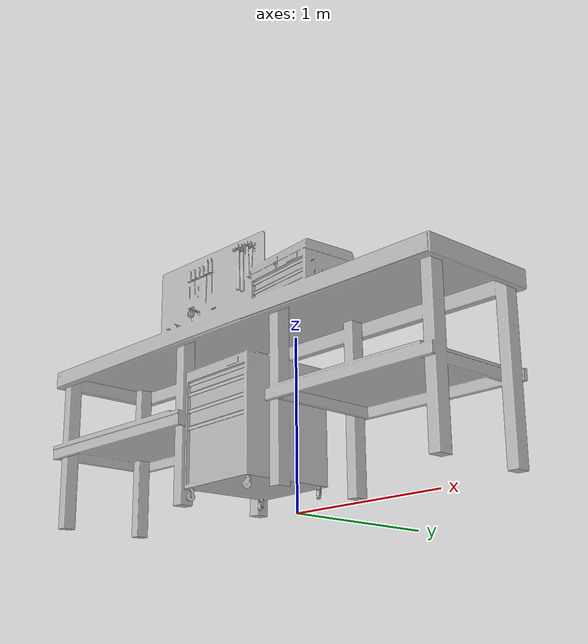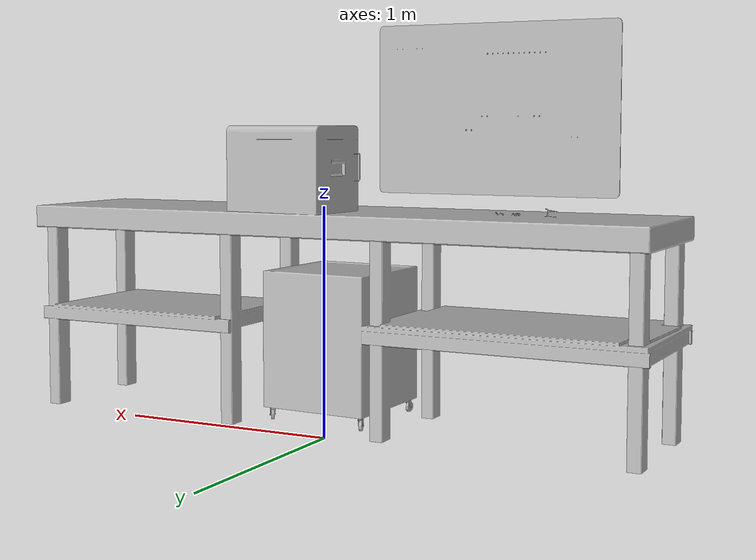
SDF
<?xml version="1.0" ?>
<sdf version="1.6">
  <model name="workbench">
    <static>true</static>
    <link name="link">
      <collision name="collision">
        <geometry>
          <mesh>
            <scale>0.8 1 1</scale>
            <uri>model://workbench/meshes/workbench.dae</uri>
          </mesh>
        </geometry>
      </collision>
      <visual name="visual">
        <geometry>
          <mesh>
            <scale>0.8 1 1</scale>
            <uri>model://workbench/meshes/workbench.dae</uri>
          </mesh>
        </geometry>
       <material>
         <script>
           <uri>model://workbench/materials/scripts</uri>
           <uri>model://workbench/materials/textures</uri>
           <name>WorkBench/Diffuse</name>
         </script>
       </material>
      </visual>
    </link>
  </model>
</sdf>
